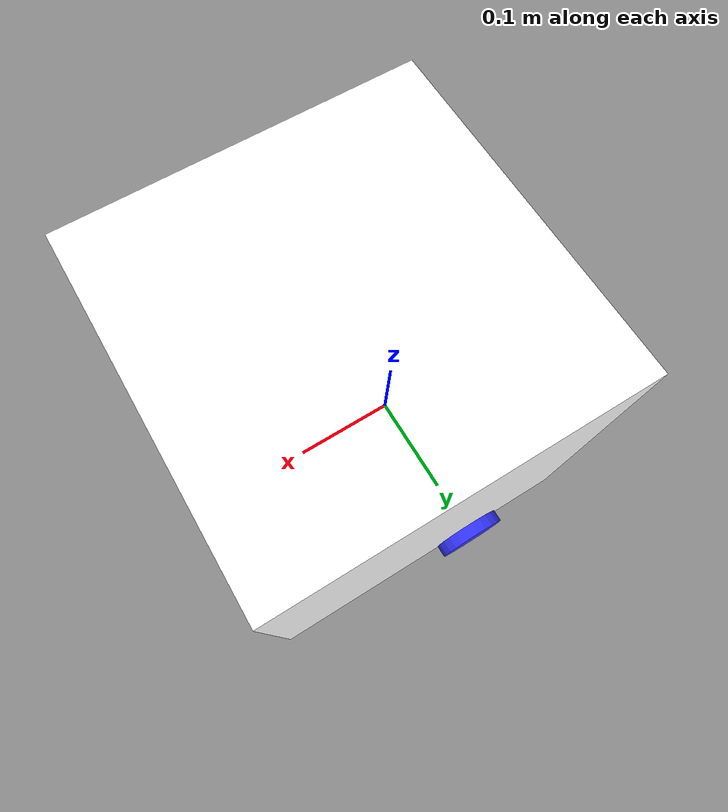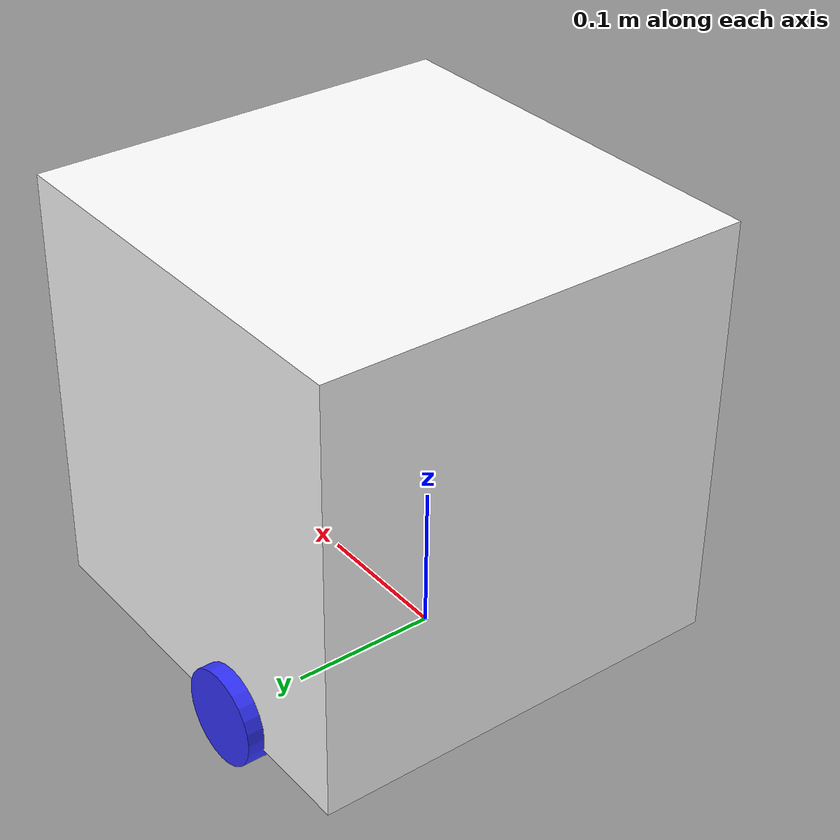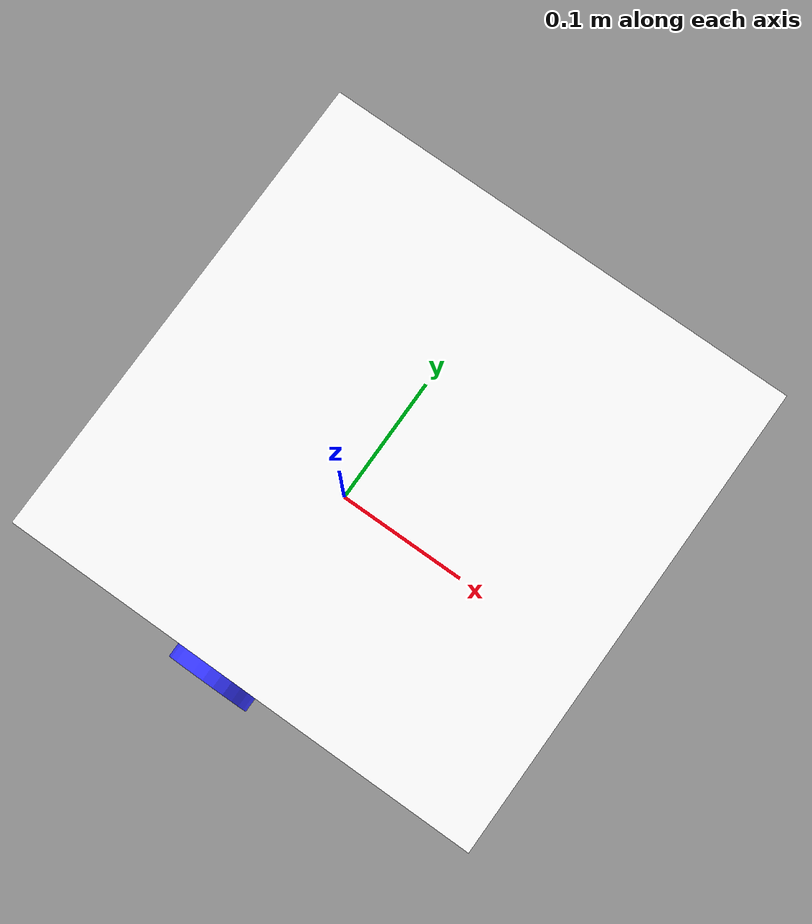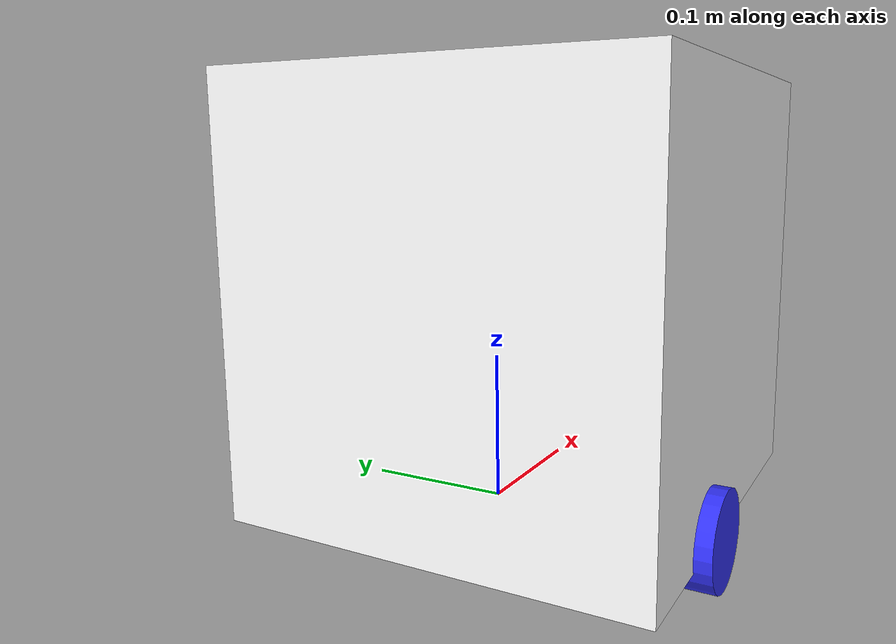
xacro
<?xml version="1.0"?>
<robot xmlns:xacro="http://www.ros.org/wiki/xacro">

    <xacro:include filename="inertial_macros.xacro"/>

    <xacro:property name="chassis_length" value="0.3"/>
    <xacro:property name="chassis_width" value="0.3"/>
    <xacro:property name="chassis_height" value="0.30"/>
    <xacro:property name="chassis_mass" value="1.0"/>
    <xacro:property name="wheel_radius" value="0.033"/>
    <xacro:property name="wheel_thickness" value="0.026"/>
    <xacro:property name="wheel_mass" value="0.05"/>
    <xacro:property name="wheel_offset_x" value="0.1"/>
    <xacro:property name="wheel_offset_y" value="0.1485"/>
    <xacro:property name="wheel_offset_z" value="0.01"/>
    <xacro:property name="caster_wheel_radius" value="0.033"/>
    <xacro:property name="caster_wheel_mass" value="0.01"/>
    <xacro:property name="caster_wheel_offset_x" value="0.24"/>
    <xacro:property name="caster_wheel_offset_z" value="${wheel_offset_z - wheel_radius + caster_wheel_radius}"/>

    <material name="white">
        <color rgba="1 1 1 1"/>
    </material>

    <material name="orange">
        <color rgba="1 0.3 0.1 1"/>
    </material>

    <material name="blue">
        <color rgba="0.2 0.2 1 1"/>
    </material>

    <material name="black">
        <color rgba="0 0 0 1"/>
    </material>

    <material name="red">
        <color rgba="1 0 0 1"/>
    </material>

    <link name="base_link">
    </link>

    <joint name="base_footprint_joint" type="fixed">
        <parent link="base_link"/>
        <child link="base_footprint"/>
        <origin xyz="0 0 0" rpy="0 0 0"/>
    </joint>

    <link name="base_footprint">
    </link>

    <joint name="chassis_joint" type="fixed">
        <parent link="base_link"/>
        <child link="chassis"/>
        <origin xyz="-${wheel_offset_x} 0 -${wheel_offset_z}"/>
    </joint>

    <link name="chassis">
        <visual>
            <origin xyz="${chassis_length/2} 0 ${chassis_height/2}"/>
            <geometry>
                <box size="${chassis_length} ${chassis_width} ${chassis_height}"/>
            </geometry>
            <material name="white"/>
        </visual>
        <collision>
            <origin xyz="${chassis_length/2} 0 ${chassis_height/2}"/>
            <geometry>
                <box size="${chassis_length} ${chassis_width} ${chassis_height}"/>
            </geometry>
        </collision>
        <xacro:inertial_box mass="${chassis_mass}" x="${chassis_length}" y="${chassis_width}" z="${chassis_height}">
            <origin xyz="${chassis_length/2} 0 ${chassis_height/2}" rpy="0 0 0"/>
        </xacro:inertial_box>
    </link>

    <gazebo reference="chassis">
        <material>Gazebo/White</material>
    </gazebo>

    <!-- LEFT WHEEL -->
    <joint name="left_wheel_joint" type="continuous">
        <parent link="base_link"/>
        <child link="left_wheel"/>
        <origin xyz="0 ${wheel_offset_y} 0" rpy="-1.570795 0 0" />
        <axis xyz="0 0 1"/>
    </joint>

    <link name="left_wheel">
        <visual>
            <geometry>
                <cylinder radius="${wheel_radius}" length="${wheel_thickness}"/>
            </geometry>
            <material name="blue"/>
        </visual>
        <collision>
            <geometry>
                <sphere radius="${wheel_radius}"/>
            </geometry>
        </collision>
        <xacro:inertial_cylinder mass="${wheel_mass}" length="${wheel_thickness}" radius="${wheel_radius}">
            <origin xyz="0 0 0" rpy="0 0 0"/>
        </xacro:inertial_cylinder>
    </link>

    <gazebo reference="left_wheel">
        <material>Gazebo/Blue</material>
    </gazebo>

    <!-- RIGHT WHEEL -->
    <joint name="right_wheel_joint" type="continuous">
        <parent link="base_link"/>
        <child link="right_wheel"/>
        <origin xyz="0 -${wheel_offset_y} 0" rpy="1.570795 0 0" />
        <axis xyz="0 0 -1"/>
    </joint>

    <link name="right_wheel">
        <visual>
            <geometry>
                <cylinder radius="${wheel_radius}" length="${wheel_thickness}"/>
            </geometry>
            <material name="blue"/>
        </visual>
        <collision>
            <geometry>
                <sphere radius="${wheel_radius}"/>
            </geometry>
        </collision>
        <xacro:inertial_cylinder mass="${wheel_mass}" length="${wheel_thickness}" radius="${wheel_radius}">
            <origin xyz="0 0 0" rpy="0 0 0"/>
        </xacro:inertial_cylinder>
    </link>

    <gazebo reference="right_wheel">
        <material>Gazebo/Blue</material>
    </gazebo>

    <!-- CASTER WHEEL -->
    <joint name="caster_wheel_joint" type="fixed">
        <parent link="chassis"/>
        <child link="caster_wheel"/>
        <origin xyz="${caster_wheel_offset_x} 0 ${caster_wheel_offset_z}"/>
    </joint>

    <link name="caster_wheel">
        <visual>
            <geometry>
                <sphere radius="${caster_wheel_radius}"/>
            </geometry>
            <material name="black"/>
        </visual>
        <collision>
            <geometry>
                <sphere radius="${caster_wheel_radius}"/>
            </geometry>
        </collision>
        <xacro:inertial_sphere mass="${caster_wheel_mass}" radius="${caster_wheel_radius}">
            <origin xyz="0 0 0" rpy="0 0 0"/>
        </xacro:inertial_sphere>
    </link>

    <gazebo reference="caster_wheel">
        <material>Gazebo/Black</material>
        <mu1 value="0.001"/>
        <mu2 value="0.001"/>
    </gazebo>

    <!-- DIFFERENTIAL DRIVE PLUGIN FOR GAZEBO -->
    <gazebo>
        <plugin name="diff_drive" filename="libgazebo_ros_diff_drive.so">
            <!-- Wheel Joints -->
            <left_joint>left_wheel_joint</left_joint>
            <right_joint>right_wheel_joint</right_joint>

            <!-- Kinematics -->
            <wheel_separation>0.297</wheel_separation>
            <wheel_diameter>0.066</wheel_diameter>

            <!-- Limits -->
            <max_wheel_torque>200</max_wheel_torque>
            <max_wheel_acceleration>10.0</max_wheel_acceleration>

            <!-- Frame Definitions -->
            <odometry_frame>odom</odometry_frame>
            <robot_base_frame>base_link</robot_base_frame>

            <!-- Enable TF Broadcasting -->
            <publish_odom>true</publish_odom>
            <publish_odom_tf>true</publish_odom_tf>
            <publish_wheel_tf>true</publish_wheel_tf>

            <update_rate>30</update_rate>
        </plugin>
    </gazebo>
</robot>
